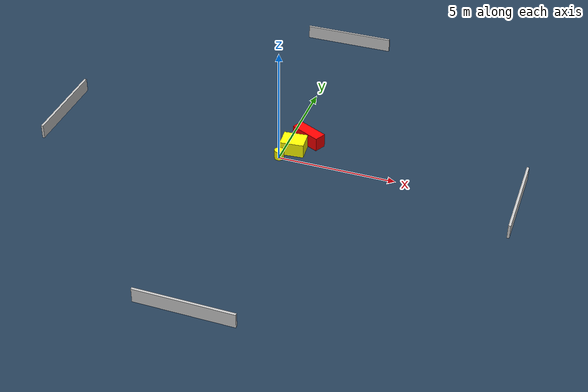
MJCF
<?xml version="1.0" ?>
<mujoco model="generated_environment">
  <option timestep="0.01" integrator="RK4" cone="elliptic"/>
  <default>
    <geom density="1"/>
  </default>
  <asset>
    <texture builtin="gradient" height="3072" name="skybox" rgb1="0.3 0.5 0.7" rgb2="0 0 0" type="skybox" width="512"/>
    <texture builtin="checker" height="300" name="groundplane" rgb1="0.2 0.3 0.4" rgb2="0.1 0.2 0.3" type="2d" width="300"/>
    <material name="groundplane" reflectance="0.2" texrepeat="5 5" texture="groundplane"/>
  </asset>
  <worldbody>
    <light dir="0 0 -1" directional="true" pos="0 0 1.5"/>
    <geom condim="3" friction="0.5 0.005 0.001" material="groundplane" name="floor" pos="0 0 0" size="0 0 0.05" type="plane"/>
    <body name="walls">
      <geom name="wall_1" condim="4" pos="-10.0 0.0 0.3" rgba="0.800000011920929 0.800000011920929 0.800000011920929 1.0" size="0.05 2.0 0.3" type="box"/>
      <geom name="wall_2" condim="4" pos="10.0 0.0 0.3" rgba="0.800000011920929 0.800000011920929 0.800000011920929 1.0" size="0.05 2.0 0.3" type="box"/>
      <geom name="wall_3" condim="4" pos="0.0 -10.0 0.3" rgba="0.800000011920929 0.800000011920929 0.800000011920929 1.0" size="2.0 0.05 0.3" type="box"/>
      <geom name="wall_4" condim="4" pos="0.0 10.0 0.3" rgba="0.800000011920929 0.800000011920929 0.800000011920929 1.0" size="2.0 0.05 0.3" type="box"/>
    </body>
    <body name="robot">
      <joint name="joint_x" type="slide" pos="0 0 0" axis="1 0 0"/>
      <joint name="joint_y" type="slide" pos="0 0 0" axis="0 1 0"/>
      <geom name="robot" type="cylinder" pos="0.0 0.0 0.2" size="0.2 0.2 0.0" mass="5.0" friction="1.0 0.005 0.0001" condim="4" rgba="1.0 1.0 0.0 1.0"/>
    </body>
    <body name="obstacle_1_movable">
      <geom name="obstacle_1_movable" condim="4" pos="0.4020289185818842 0.7044393551673267 0.3" euler="0 0 95.13266351608836" friction="0.0 0.005 0.001" rgba="1.0 1.0 0.0 1.0" size="0.41480205620703453 0.5079878550217982 0.3" type="box" mass="0.1"/>
      <joint type="free"/>
    </body>
    <body name="obstacle_2_static">
      <geom name="obstacle_2_static" condim="4" pos="0.7939739335831253 1.5132607434830636 0.3" euler="0 0 333.6568208320843" friction="0.0 0.005 0.001" rgba="1.0 0.0 0.0 1.0" size="0.6853780587702725 0.2565704518545833 0.3" type="box"/>
    </body>
  </worldbody>
  <actuator>
    <motor name="actuator_x" joint="joint_x" gear="1" ctrlrange="-1 1"/>
    <motor name="actuator_y" joint="joint_y" gear="1" ctrlrange="-1 1"/>
  </actuator>
</mujoco>
